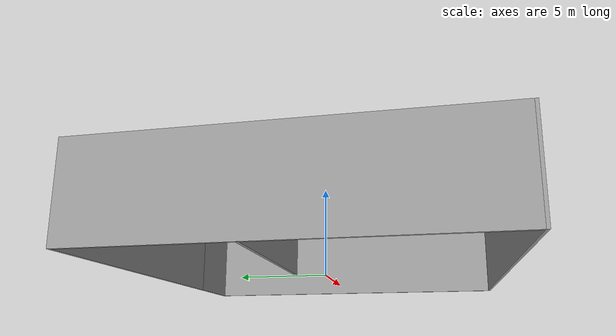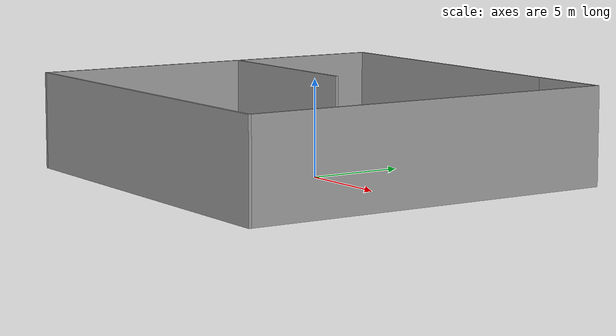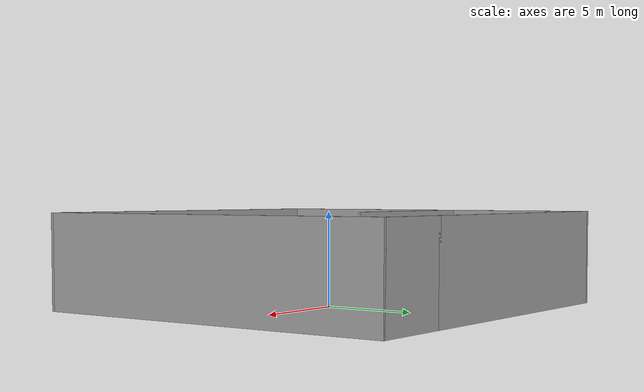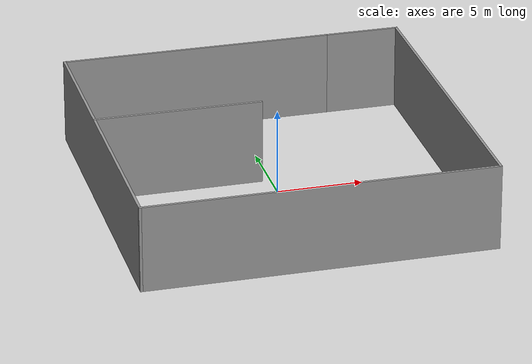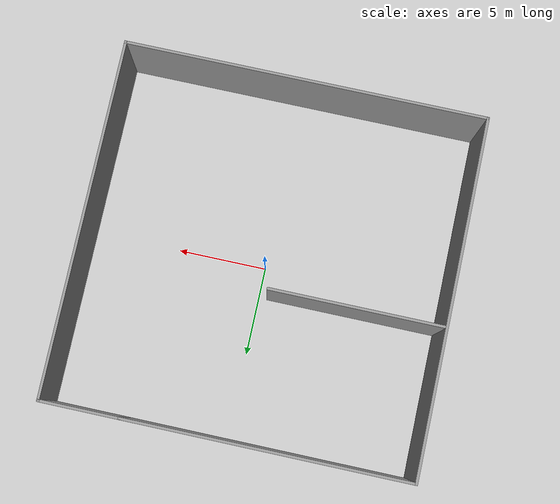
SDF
<?xml version='1.0'?>
<sdf version='1.7'>
  <model name='demo_tall_wall'>
    <pose>-0.107 0 0 0 -0 0</pose>
    <link name='Wall_26'>
      <collision name='Wall_26_Collision'>
        <geometry>
          <box>
            <size>15.75 0.15 5</size>
          </box>
        </geometry>
        <pose>0 0 2.5 0 -0 0</pose>
      </collision>
      <visual name='Wall_26_Visual'>
        <pose>0 0 2.5 0 -0 0</pose>
        <geometry>
          <box>
            <size>15.75 0.15 5</size>
          </box>
        </geometry>
        <material>
          <script>
            <uri>file://media/materials/scripts/gazebo.material</uri>
            <name>Gazebo/Grey</name>
          </script>
          <ambient>1 1 1 1</ambient>
        </material>
        <meta>
          <layer>0</layer>
        </meta>
      </visual>
      <pose>-2.1 9.925 0 0 -0 0</pose>
    </link>
    <link name='Wall_29'>
      <collision name='Wall_29_Collision'>
        <geometry>
          <box>
            <size>4.5 0.15 5</size>
          </box>
        </geometry>
        <pose>0 0 2.5 0 -0 0</pose>
      </collision>
      <visual name='Wall_29_Visual'>
        <pose>0 0 2.5 0 -0 0</pose>
        <geometry>
          <box>
            <size>4.5 0.15 5</size>
          </box>
        </geometry>
        <material>
          <script>
            <uri>file://media/materials/scripts/gazebo.material</uri>
            <name>Gazebo/Grey</name>
          </script>
          <ambient>1 1 1 1</ambient>
        </material>
        <meta>
          <layer>0</layer>
        </meta>
      </visual>
      <pose>7.875 9.925 0 0 -0 0</pose>
    </link>
    <link name='Wall_32'>
      <collision name='Wall_32_Collision'>
        <geometry>
          <box>
            <size>20 0.15 5</size>
          </box>
        </geometry>
        <pose>0 0 2.5 0 -0 0</pose>
      </collision>
      <visual name='Wall_32_Visual'>
        <pose>0 0 2.5 0 -0 0</pose>
        <geometry>
          <box>
            <size>20 0.15 5</size>
          </box>
        </geometry>
        <material>
          <script>
            <uri>file://media/materials/scripts/gazebo.material</uri>
            <name>Gazebo/Grey</name>
          </script>
          <ambient>1 1 1 1</ambient>
        </material>
        <meta>
          <layer>0</layer>
        </meta>
      </visual>
      <pose>10.05 0 0 0 -0 -1.5708</pose>
    </link>
    <link name='Wall_33'>
      <collision name='Wall_33_Collision'>
        <geometry>
          <box>
            <size>20.25 0.15 5</size>
          </box>
        </geometry>
        <pose>0 0 2.5 0 -0 0</pose>
      </collision>
      <visual name='Wall_33_Visual'>
        <pose>0 0 2.5 0 -0 0</pose>
        <geometry>
          <box>
            <size>20.25 0.15 5</size>
          </box>
        </geometry>
        <material>
          <script>
            <uri>file://media/materials/scripts/gazebo.material</uri>
            <name>Gazebo/Grey</name>
          </script>
          <ambient>1 1 1 1</ambient>
        </material>
        <meta>
          <layer>0</layer>
        </meta>
      </visual>
      <pose>-0 -9.925 0 0 -0 3.14159</pose>
    </link>
    <link name='Wall_34'>
      <collision name='Wall_34_Collision'>
        <geometry>
          <box>
            <size>20 0.15 5</size>
          </box>
        </geometry>
        <pose>0 0 2.5 0 -0 0</pose>
      </collision>
      <visual name='Wall_34_Visual'>
        <pose>0 0 2.5 0 -0 0</pose>
        <geometry>
          <box>
            <size>20 0.15 5</size>
          </box>
        </geometry>
        <material>
          <script>
            <uri>file://media/materials/scripts/gazebo.material</uri>
            <name>Gazebo/Grey</name>
          </script>
          <ambient>1 1 1 1</ambient>
        </material>
        <meta>
          <layer>0</layer>
        </meta>
      </visual>
      <pose>-10.05 0 0 0 -0 1.5708</pose>
    </link>
    <link name='Wall_36'>
      <collision name='Wall_36_Collision'>
        <geometry>
          <box>
            <size>9.75 0.15 5</size>
          </box>
        </geometry>
        <pose>0 0 2.5 0 -0 0</pose>
      </collision>
      <visual name='Wall_36_Visual'>
        <pose>0 0 2.5 0 -0 0</pose>
        <geometry>
          <box>
            <size>9.75 0.15 5</size>
          </box>
        </geometry>
        <material>
          <script>
            <uri>file://media/materials/scripts/gazebo.material</uri>
            <name>Gazebo/Grey</name>
          </script>
          <ambient>1 1 1 1</ambient>
        </material>
        <meta>
          <layer>0</layer>
        </meta>
      </visual>
      <pose>-5.222 1.636 0 0 -0 0</pose>
    </link>
    <static>1</static>
  </model>
</sdf>
